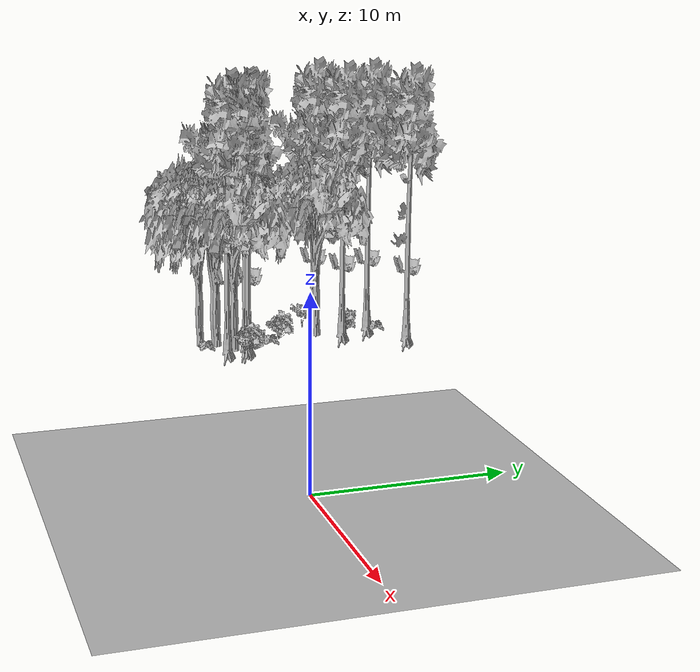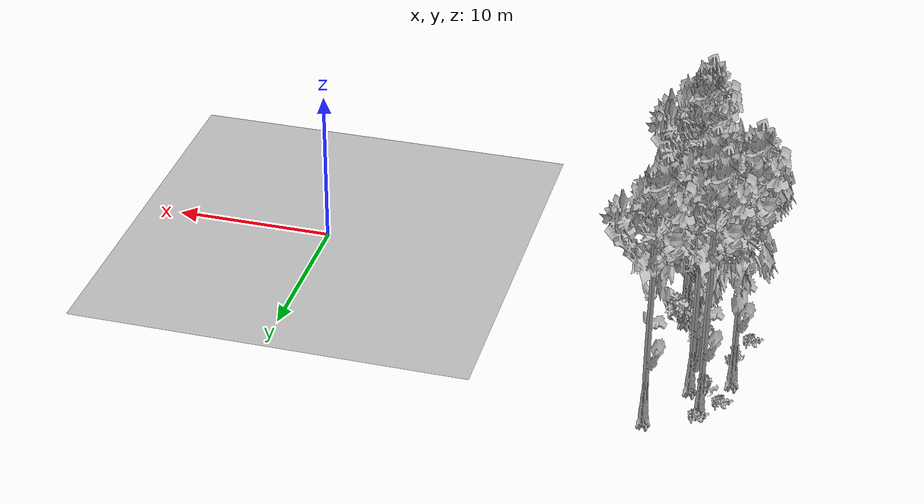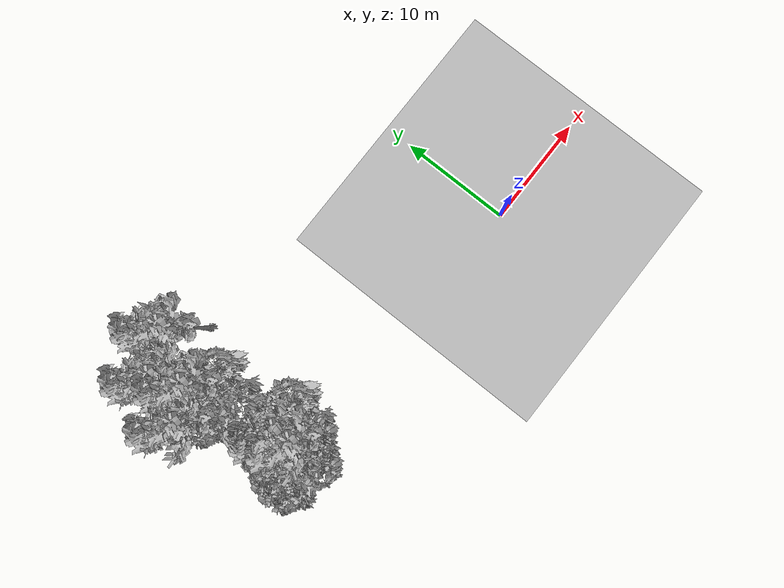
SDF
<sdf version="1.7">
 <world name="default">
  <model name="ground_plane">
   <static>1</static>
   <link name="link">
    <collision name="collision">
     <pose>-50 0 0 0 -0 0</pose>
     <geometry><plane><normal>0 0 1</normal><size>80 80</size></plane></geometry>
     <surface><contact><ode><min_depth>0.01</min_depth><max_vel>0</max_vel></ode></contact></surface>
    </collision>
    <visual name="grass">
     <cast_shadows>0</cast_shadows>
     <geometry>
      <mesh>
       <scale>0.46714285714285714 0.46714285714285714 0.1</scale>
       <uri>file://grass_plane/meshes/grass_plane.dae</uri>
      </mesh>
     </geometry>
    </visual>
   </link>
  </model>
  <model name="Tree 49">
   <static>1</static>
   <pose>-23.845675682282554 3.142741861515354 0 1.57079 -0 0</pose>
   <link name="link">
    <collision name="collision">
     <geometry><mesh><scale>3.5 5 3.5</scale><uri>model://tree_9/meshes/tree_9.obj</uri></mesh></geometry>
    </collision>
    <visual name="visual">
     <geometry><mesh><scale>3.5 5 3.5</scale><uri>model://tree_9/meshes/tree_9.obj</uri></mesh></geometry>
    </visual>
   </link>
  </model>
  <model name="Tree 54">
   <static>1</static>
   <pose>-24.817108965583323 1.5449232847984007 0 1.57079 -0 0</pose>
   <link name="link">
    <collision name="collision">
     <geometry><mesh><scale>3.5 5 3.5</scale><uri>model://tree_2/meshes/tree_2.obj</uri></mesh></geometry>
    </collision>
    <visual name="visual">
     <geometry><mesh><scale>3.5 5 3.5</scale><uri>model://tree_2/meshes/tree_2.obj</uri></mesh></geometry>
    </visual>
   </link>
  </model>
  <model name="Tree 99">
   <static>1</static>
   <pose>-23.63000901311588 3.256209111659942 0 1.57079 -0 0</pose>
   <link name="link">
    <collision name="collision">
     <geometry><mesh><scale>3.5 5 3.5</scale><uri>model://tree_9/meshes/tree_9.obj</uri></mesh></geometry>
    </collision>
    <visual name="visual">
     <geometry><mesh><scale>3.5 5 3.5</scale><uri>model://tree_9/meshes/tree_9.obj</uri></mesh></geometry>
    </visual>
   </link>
  </model>
  <model name="Tree 168">
   <static>1</static>
   <pose>-25.0123658744454 1.4337650720172164 0 1.57079 -0 0</pose>
   <link name="link">
    <collision name="collision">
     <geometry><mesh><scale>3.5 5 3.5</scale><uri>model://tree_2/meshes/tree_2.obj</uri></mesh></geometry>
    </collision>
    <visual name="visual">
     <geometry><mesh><scale>3.5 5 3.5</scale><uri>model://tree_2/meshes/tree_2.obj</uri></mesh></geometry>
    </visual>
   </link>
  </model>
  <model name="Tree 196">
   <static>1</static>
   <pose>-25.99985367108478 11.876615066545014 0 1.57079 -0 0</pose>
   <link name="link">
    <collision name="collision">
     <geometry><mesh><scale>3.5 5 3.5</scale><uri>model://tree_9/meshes/tree_9.obj</uri></mesh></geometry>
    </collision>
    <visual name="visual">
     <geometry><mesh><scale>3.5 5 3.5</scale><uri>model://tree_9/meshes/tree_9.obj</uri></mesh></geometry>
    </visual>
   </link>
  </model>
  <model name="Tree 244">
   <static>1</static>
   <pose>-27.360315514144805 8.642875615131864 0 1.57079 -0 0</pose>
   <link name="link">
    <collision name="collision">
     <geometry><mesh><scale>3.5 5 3.5</scale><uri>model://tree_9/meshes/tree_9.obj</uri></mesh></geometry>
    </collision>
    <visual name="visual">
     <geometry><mesh><scale>3.5 5 3.5</scale><uri>model://tree_9/meshes/tree_9.obj</uri></mesh></geometry>
    </visual>
   </link>
  </model>
  <model name="Tree 360">
   <static>1</static>
   <pose>-23.601029730189765 2.386598946256882 0 1.57079 -0 0</pose>
   <link name="link">
    <collision name="collision">
     <geometry><mesh><scale>3.5 5 3.5</scale><uri>model://tree_2/meshes/tree_2.obj</uri></mesh></geometry>
    </collision>
    <visual name="visual">
     <geometry><mesh><scale>3.5 5 3.5</scale><uri>model://tree_2/meshes/tree_2.obj</uri></mesh></geometry>
    </visual>
   </link>
  </model>
  <model name="Tree 387">
   <static>1</static>
   <pose>-25.287087119197228 0.5584013673808954 0 1.57079 -0 0</pose>
   <link name="link">
    <collision name="collision">
     <geometry><mesh><scale>3.5 5 3.5</scale><uri>model://tree_2/meshes/tree_2.obj</uri></mesh></geometry>
    </collision>
    <visual name="visual">
     <geometry><mesh><scale>3.5 5 3.5</scale><uri>model://tree_2/meshes/tree_2.obj</uri></mesh></geometry>
    </visual>
   </link>
  </model>
  <model name="Tree 400">
   <static>1</static>
   <pose>-25.26354996196048 8.192397482183942 0 1.57079 -0 0</pose>
   <link name="link">
    <collision name="collision">
     <geometry><mesh><scale>3.5 5 3.5</scale><uri>model://tree_2/meshes/tree_2.obj</uri></mesh></geometry>
    </collision>
    <visual name="visual">
     <geometry><mesh><scale>3.5 5 3.5</scale><uri>model://tree_2/meshes/tree_2.obj</uri></mesh></geometry>
    </visual>
   </link>
  </model>
  <model name="Tree 415">
   <static>1</static>
   <pose>-23.067139645819267 13.534718871026854 0 1.57079 -0 0</pose>
   <link name="link">
    <collision name="collision">
     <geometry><mesh><scale>3.5 5 3.5</scale><uri>model://tree_9/meshes/tree_9.obj</uri></mesh></geometry>
    </collision>
    <visual name="visual">
     <geometry><mesh><scale>3.5 5 3.5</scale><uri>model://tree_9/meshes/tree_9.obj</uri></mesh></geometry>
    </visual>
   </link>
  </model>
  <model name="Tree 439">
   <static>1</static>
   <pose>-23.59952715734537 1.9460964889245957 0 1.57079 -0 0</pose>
   <link name="link">
    <collision name="collision">
     <geometry><mesh><scale>3.5 5 3.5</scale><uri>model://tree_9/meshes/tree_9.obj</uri></mesh></geometry>
    </collision>
    <visual name="visual">
     <geometry><mesh><scale>3.5 5 3.5</scale><uri>model://tree_9/meshes/tree_9.obj</uri></mesh></geometry>
    </visual>
   </link>
  </model>
  <model name="Tree 619">
   <static>1</static>
   <pose>-25.108823865416753 9.891457968620962 0 1.57079 -0 0</pose>
   <link name="link">
    <collision name="collision">
     <geometry><mesh><scale>3.5 5 3.5</scale><uri>model://tree_9/meshes/tree_9.obj</uri></mesh></geometry>
    </collision>
    <visual name="visual">
     <geometry><mesh><scale>3.5 5 3.5</scale><uri>model://tree_9/meshes/tree_9.obj</uri></mesh></geometry>
    </visual>
   </link>
  </model>
  <model name="Bush 28">
   <static>1</static>
   <pose>-25.989872781663127 12.466056529958998 0 1.57079 -0 0</pose>
   <link name="link">
    <collision name="collision">
     <geometry><mesh><scale>2 2 2</scale><uri>model://bush_2/meshes/bush_2.obj</uri></mesh></geometry>
     <surface><contact><collide_without_contact>false</collide_without_contact></contact></surface>
    </collision>
    <visual name="visual">
     <geometry><mesh><scale>2 2 2</scale><uri>model://bush_2/meshes/bush_2.obj</uri></mesh></geometry>
    </visual>
   </link>
  </model>
  <model name="Bush 31">
   <static>1</static>
   <pose>-24.938085990400182 5.050615916870399 0 1.57079 -0 0</pose>
   <link name="link">
    <collision name="collision">
     <geometry><mesh><scale>2 2 2</scale><uri>model://bush_2/meshes/bush_2.obj</uri></mesh></geometry>
     <surface><contact><collide_without_contact>false</collide_without_contact></contact></surface>
    </collision>
    <visual name="visual">
     <geometry><mesh><scale>2 2 2</scale><uri>model://bush_2/meshes/bush_2.obj</uri></mesh></geometry>
    </visual>
   </link>
  </model>
  <model name="Bush 53">
   <static>1</static>
   <pose>-25.144354577237827 5.6855673898315615 0 1.57079 -0 0</pose>
   <link name="link">
    <collision name="collision">
     <geometry><mesh><scale>2 2 2</scale><uri>model://bush_1/meshes/bush_1.obj</uri></mesh></geometry>
     <surface><contact><collide_without_contact>false</collide_without_contact></contact></surface>
    </collision>
    <visual name="visual">
     <geometry><mesh><scale>2 2 2</scale><uri>model://bush_1/meshes/bush_1.obj</uri></mesh></geometry>
    </visual>
   </link>
  </model>
  <model name="Bush 60">
   <static>1</static>
   <pose>-23.28181284914939 3.1284892139295835 0 1.57079 -0 0</pose>
   <link name="link">
    <collision name="collision">
     <geometry><mesh><scale>2 2 2</scale><uri>model://bush_1/meshes/bush_1.obj</uri></mesh></geometry>
     <surface><contact><collide_without_contact>false</collide_without_contact></contact></surface>
    </collision>
    <visual name="visual">
     <geometry><mesh><scale>2 2 2</scale><uri>model://bush_1/meshes/bush_1.obj</uri></mesh></geometry>
    </visual>
   </link>
  </model>
  <model name="Bush 199">
   <static>1</static>
   <pose>-27.26611104562187 7.876952684171592 0 1.57079 -0 0</pose>
   <link name="link">
    <collision name="collision">
     <geometry><mesh><scale>2 2 2</scale><uri>model://bush_5/meshes/bush_5.obj</uri></mesh></geometry>
     <surface><contact><collide_without_contact>false</collide_without_contact></contact></surface>
    </collision>
    <visual name="visual">
     <geometry><mesh><scale>2 2 2</scale><uri>model://bush_5/meshes/bush_5.obj</uri></mesh></geometry>
    </visual>
   </link>
  </model>
  <model name="Bush 243">
   <static>1</static>
   <pose>-22.773054752702002 2.8033779073043164 0 1.57079 -0 0</pose>
   <link name="link">
    <collision name="collision">
     <geometry><mesh><scale>2 2 2</scale><uri>model://bush_0/meshes/bush_0.obj</uri></mesh></geometry>
     <surface><contact><collide_without_contact>false</collide_without_contact></contact></surface>
    </collision>
    <visual name="visual">
     <geometry><mesh><scale>2 2 2</scale><uri>model://bush_0/meshes/bush_0.obj</uri></mesh></geometry>
    </visual>
   </link>
  </model>
  <model name="Bush 253">
   <static>1</static>
   <pose>-27.10015571971342 10.881241705697285 0 1.57079 -0 0</pose>
   <link name="link">
    <collision name="collision">
     <geometry><mesh><scale>2 2 2</scale><uri>model://bush_2/meshes/bush_2.obj</uri></mesh></geometry>
     <surface><contact><collide_without_contact>false</collide_without_contact></contact></surface>
    </collision>
    <visual name="visual">
     <geometry><mesh><scale>2 2 2</scale><uri>model://bush_2/meshes/bush_2.obj</uri></mesh></geometry>
    </visual>
   </link>
  </model>
  <model name="Bush 282">
   <static>1</static>
   <pose>-26.057941588405313 10.50082263758425 0 1.57079 -0 0</pose>
   <link name="link">
    <collision name="collision">
     <geometry><mesh><scale>2 2 2</scale><uri>model://bush_4/meshes/bush_4.obj</uri></mesh></geometry>
     <surface><contact><collide_without_contact>false</collide_without_contact></contact></surface>
    </collision>
    <visual name="visual">
     <geometry><mesh><scale>2 2 2</scale><uri>model://bush_4/meshes/bush_4.obj</uri></mesh></geometry>
    </visual>
   </link>
  </model>
  <model name="Bush 437">
   <static>1</static>
   <pose>-23.498680900077325 3.6857138048107174 0 1.57079 -0 0</pose>
   <link name="link">
    <collision name="collision">
     <geometry><mesh><scale>2 2 2</scale><uri>model://bush_4/meshes/bush_4.obj</uri></mesh></geometry>
     <surface><contact><collide_without_contact>false</collide_without_contact></contact></surface>
    </collision>
    <visual name="visual">
     <geometry><mesh><scale>2 2 2</scale><uri>model://bush_4/meshes/bush_4.obj</uri></mesh></geometry>
    </visual>
   </link>
  </model>
  <model name="Bush 575">
   <static>1</static>
   <pose>-24.861580862064905 0.8531963133136173 0 1.57079 -0 0</pose>
   <link name="link">
    <collision name="collision">
     <geometry><mesh><scale>2 2 2</scale><uri>model://bush_2/meshes/bush_2.obj</uri></mesh></geometry>
     <surface><contact><collide_without_contact>false</collide_without_contact></contact></surface>
    </collision>
    <visual name="visual">
     <geometry><mesh><scale>2 2 2</scale><uri>model://bush_2/meshes/bush_2.obj</uri></mesh></geometry>
    </visual>
   </link>
  </model>
  <model name="Bush 579">
   <static>1</static>
   <pose>-27.914117381983736 4.4170078565901605 0 1.57079 -0 0</pose>
   <link name="link">
    <collision name="collision">
     <geometry><mesh><scale>2 2 2</scale><uri>model://bush_2/meshes/bush_2.obj</uri></mesh></geometry>
     <surface><contact><collide_without_contact>false</collide_without_contact></contact></surface>
    </collision>
    <visual name="visual">
     <geometry><mesh><scale>2 2 2</scale><uri>model://bush_2/meshes/bush_2.obj</uri></mesh></geometry>
    </visual>
   </link>
  </model>
 </world>
</sdf>
